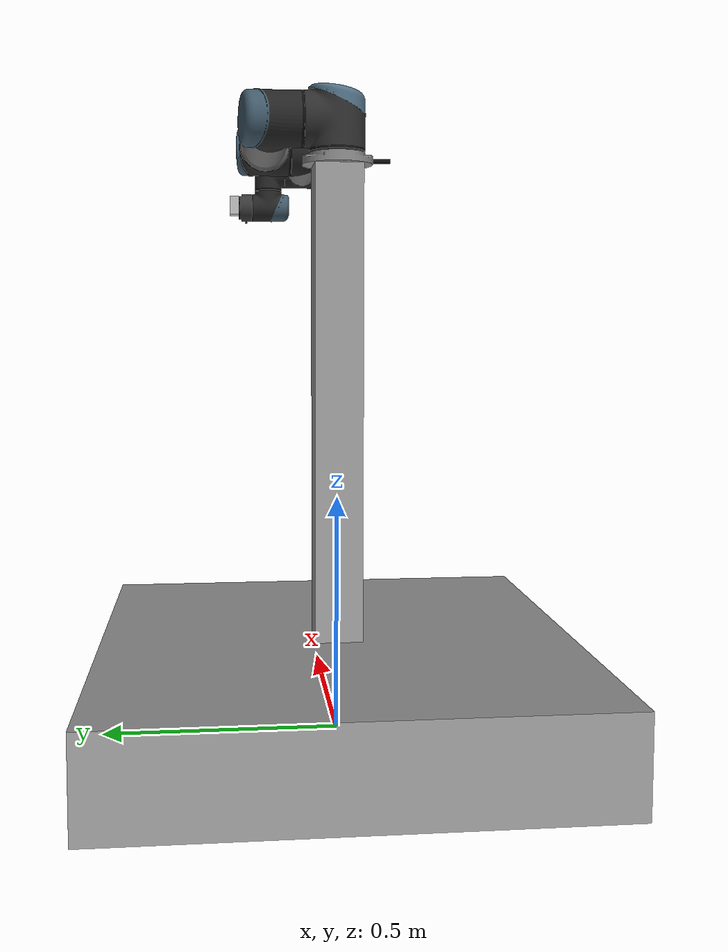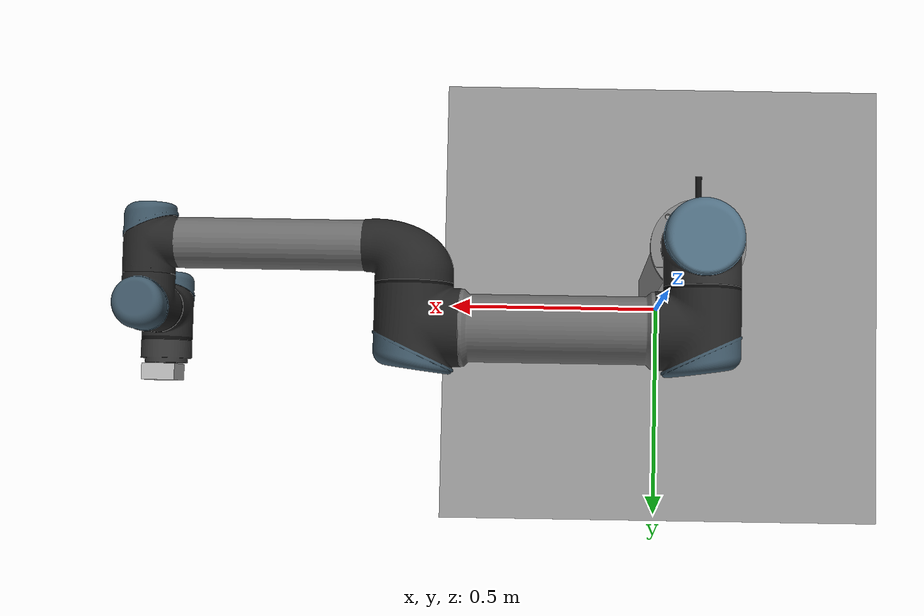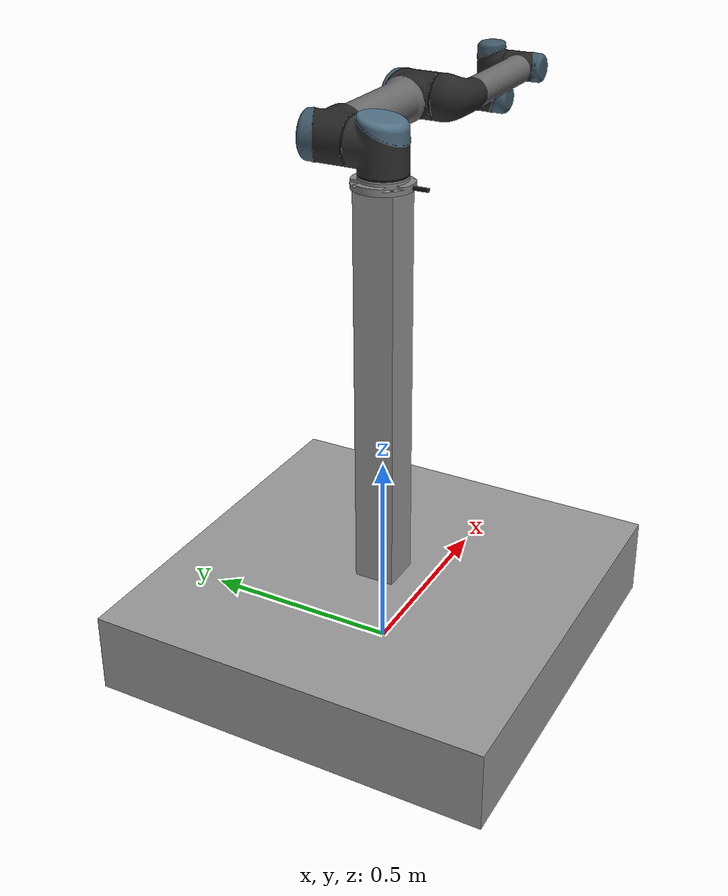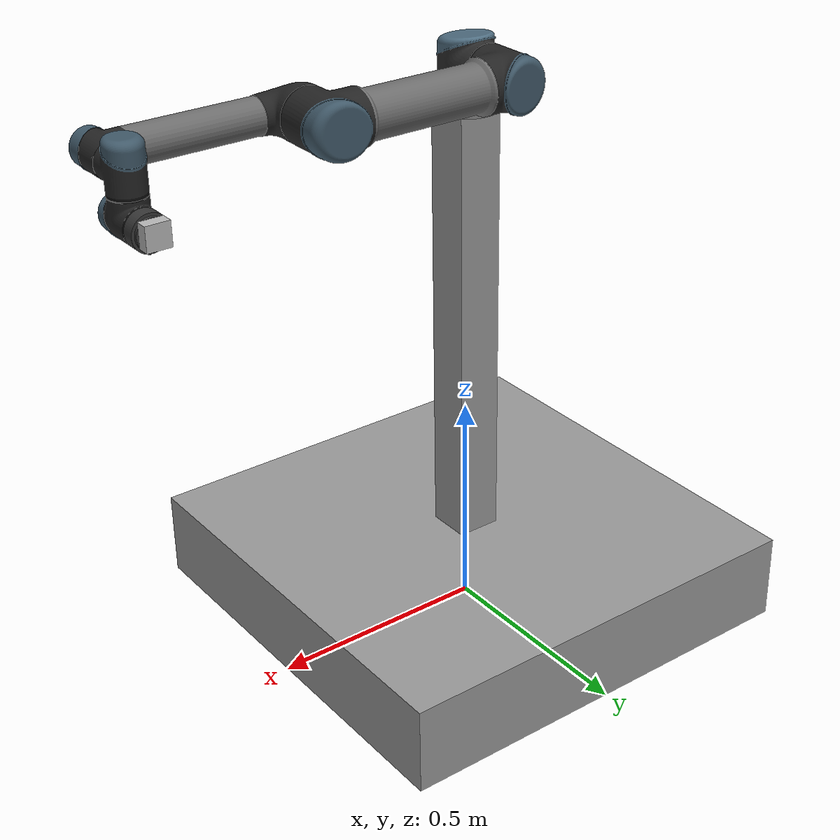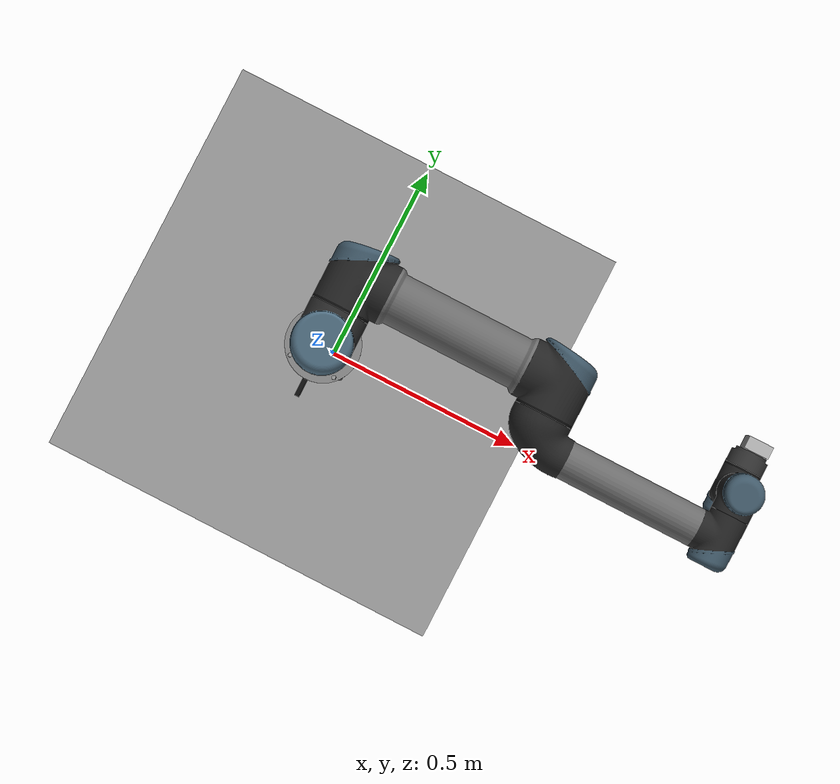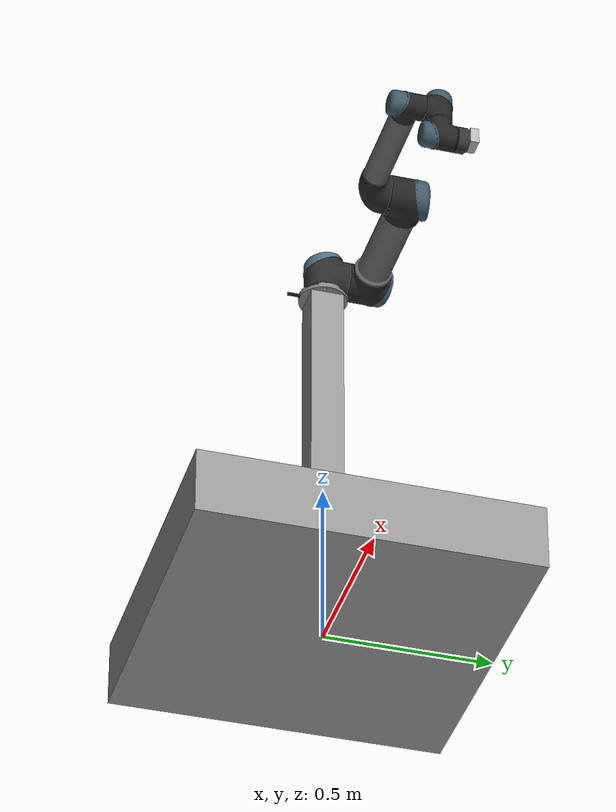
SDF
<?xml version='1.0'?>
<sdf version='1.6'>
  <model name='robot_model'>

    <include>
      <uri>model://base_stand/</uri>
      <pose>0 0 0 0 0 0</pose>>
    </include>

    <include>
    	<uri>model://ur5/</uri>
    	<pose>0 0 1.2 0 0 0</pose>>
    </include>

    <joint name="fixed_to_ground" type="fixed">
      <child>base_stand::ground_base_link</child>
      <parent>world</parent>
    </joint>

    <joint name="base_stand_joint" type="fixed">
      <child>ur5::base_link</child>
      <parent>base_stand::upper_base_link</parent>
    </joint>

    <static>0</static>
    <allow_auto_disable>1</allow_auto_disable>
  </model>
</sdf>
